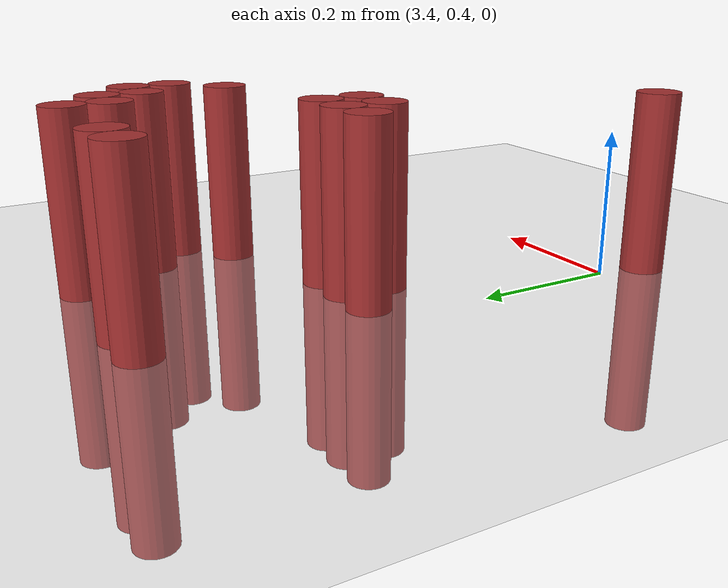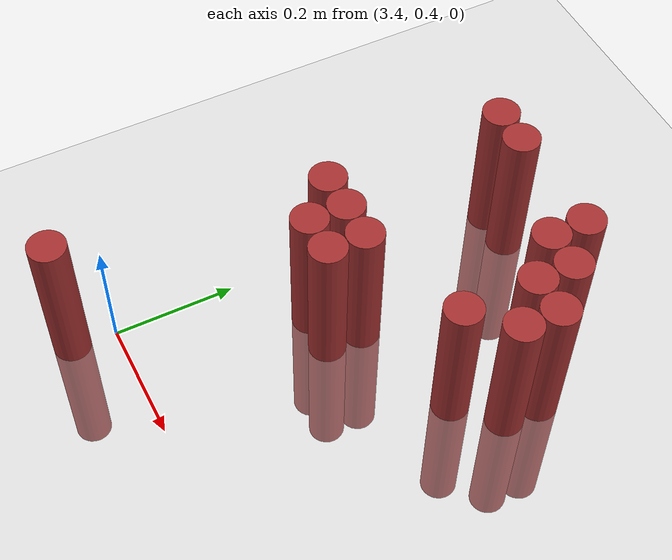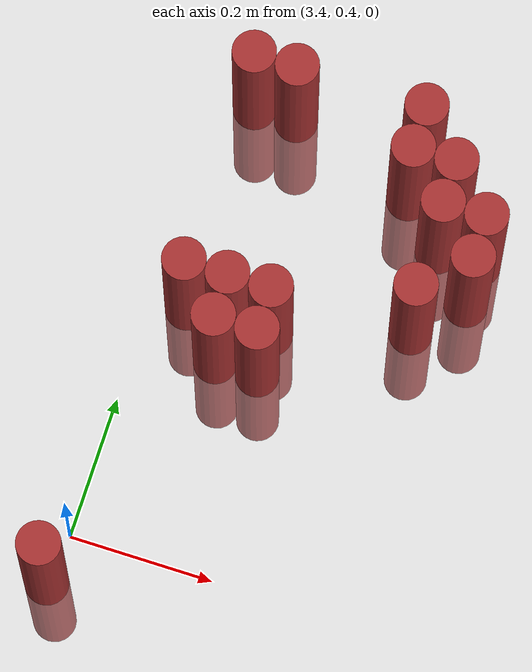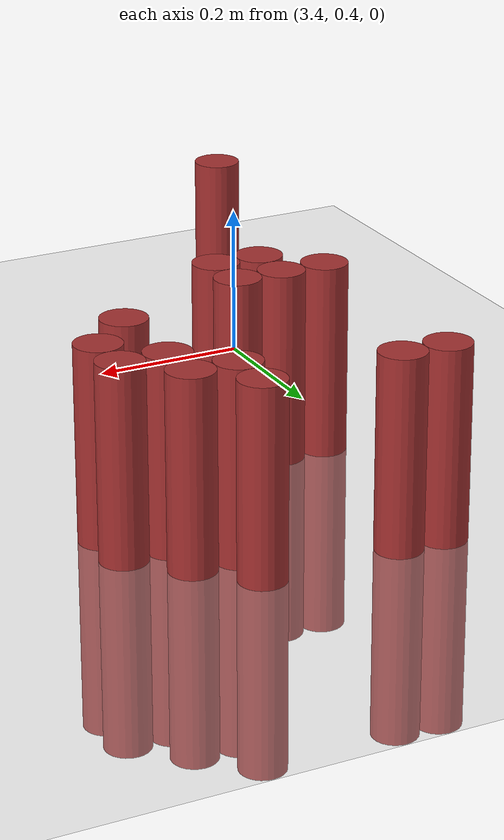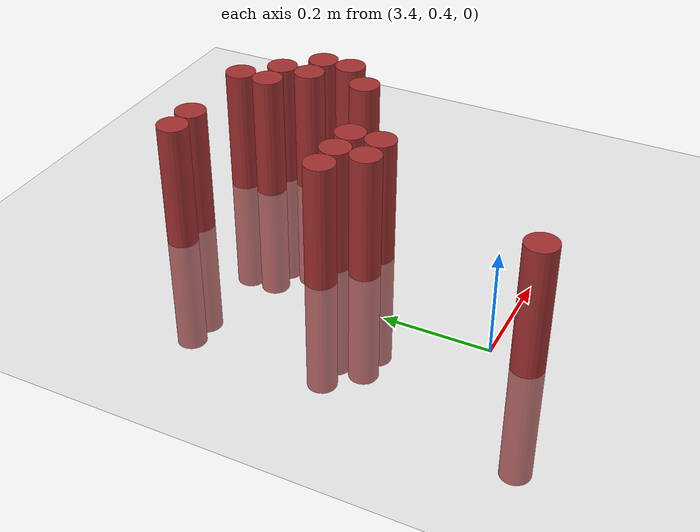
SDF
<sdf version="1.6">
 <world name="default">
  <model name="ground_plane">
   <static>1</static>
   <link name="link">
    <collision name="collision">
     <geometry><plane><normal>0 0 1</normal><size>100 100</size></plane></geometry>
     <surface><friction><ode><mu>100</mu><mu2>50</mu2></ode></friction></surface>
    </collision>
    <visual name="visual">
     <cast_shadows>0</cast_shadows>
     <geometry><plane><normal>0 0 1</normal><size>100 100</size></plane></geometry>
     <material>
      <script><uri>file://media/materials/scripts/gazebo.material</uri><name>Gazebo/Grey</name></script>
     </material>
    </visual>
   </link>
  </model>
  <model name="unit_cylinder_169">
   <static>1</static>
   <pose>3.450000 1.050000 0.000000 0.000000 0.000000 0.000000</pose>
   <link name="link">
    <inertial>
     <mass>1</mass>
     <inertia><ixx>0.145833</ixx><ixy>0</ixy><ixz>0</ixz><iyy>0.145833</iyy><iyz>0</iyz><izz>0.125</izz></inertia>
    </inertial>
    <collision name="collision">
     <geometry><cylinder><radius>0.030000</radius><length>0.5</length></cylinder></geometry>
    </collision>
    <visual name="visual">
     <geometry><cylinder><radius>0.030000</radius><length>0.5</length></cylinder></geometry>
     <material>
      <ambient>0.648000 0.192000 0.192000 1</ambient>
      <diffuse>0.648000 0.192000 0.192000 1</diffuse>
     </material>
     <material>
      <script><name>Gazebo/Grey</name><uri>file://media/materials/scripts/gazebo.material</uri></script>
     </material>
    </visual>
   </link>
  </model>
  <model name="unit_cylinder_170">
   <static>1</static>
   <pose>3.510000 1.050000 0.000000 0.000000 0.000000 0.000000</pose>
   <link name="link">
    <inertial>
     <mass>1</mass>
     <inertia><ixx>0.145833</ixx><ixy>0</ixy><ixz>0</ixz><iyy>0.145833</iyy><iyz>0</iyz><izz>0.125</izz></inertia>
    </inertial>
    <collision name="collision">
     <geometry><cylinder><radius>0.030000</radius><length>0.5</length></cylinder></geometry>
    </collision>
    <visual name="visual">
     <geometry><cylinder><radius>0.030000</radius><length>0.5</length></cylinder></geometry>
     <material>
      <ambient>0.648000 0.192000 0.192000 1</ambient>
      <diffuse>0.648000 0.192000 0.192000 1</diffuse>
     </material>
     <material>
      <script><name>Gazebo/Grey</name><uri>file://media/materials/scripts/gazebo.material</uri></script>
     </material>
    </visual>
   </link>
  </model>
  <model name="unit_cylinder_171">
   <static>1</static>
   <pose>3.690000 1.050000 0.000000 0.000000 0.000000 0.000000</pose>
   <link name="link">
    <inertial>
     <mass>1</mass>
     <inertia><ixx>0.145833</ixx><ixy>0</ixy><ixz>0</ixz><iyy>0.145833</iyy><iyz>0</iyz><izz>0.125</izz></inertia>
    </inertial>
    <collision name="collision">
     <geometry><cylinder><radius>0.030000</radius><length>0.5</length></cylinder></geometry>
    </collision>
    <visual name="visual">
     <geometry><cylinder><radius>0.030000</radius><length>0.5</length></cylinder></geometry>
     <material>
      <ambient>0.648000 0.192000 0.192000 1</ambient>
      <diffuse>0.648000 0.192000 0.192000 1</diffuse>
     </material>
     <material>
      <script><name>Gazebo/Grey</name><uri>file://media/materials/scripts/gazebo.material</uri></script>
     </material>
    </visual>
   </link>
  </model>
  <model name="unit_cylinder_173">
   <static>1</static>
   <pose>3.690000 0.990000 0.000000 0.000000 0.000000 0.000000</pose>
   <link name="link">
    <inertial>
     <mass>1</mass>
     <inertia><ixx>0.145833</ixx><ixy>0</ixy><ixz>0</ixz><iyy>0.145833</iyy><iyz>0</iyz><izz>0.125</izz></inertia>
    </inertial>
    <collision name="collision">
     <geometry><cylinder><radius>0.030000</radius><length>0.5</length></cylinder></geometry>
    </collision>
    <visual name="visual">
     <geometry><cylinder><radius>0.030000</radius><length>0.5</length></cylinder></geometry>
     <material>
      <ambient>0.648000 0.192000 0.192000 1</ambient>
      <diffuse>0.648000 0.192000 0.192000 1</diffuse>
     </material>
     <material>
      <script><name>Gazebo/Grey</name><uri>file://media/materials/scripts/gazebo.material</uri></script>
     </material>
    </visual>
   </link>
  </model>
  <model name="unit_cylinder_174">
   <static>1</static>
   <pose>3.750000 0.990000 0.000000 0.000000 0.000000 0.000000</pose>
   <link name="link">
    <inertial>
     <mass>1</mass>
     <inertia><ixx>0.145833</ixx><ixy>0</ixy><ixz>0</ixz><iyy>0.145833</iyy><iyz>0</iyz><izz>0.125</izz></inertia>
    </inertial>
    <collision name="collision">
     <geometry><cylinder><radius>0.030000</radius><length>0.5</length></cylinder></geometry>
    </collision>
    <visual name="visual">
     <geometry><cylinder><radius>0.030000</radius><length>0.5</length></cylinder></geometry>
     <material>
      <ambient>0.648000 0.192000 0.192000 1</ambient>
      <diffuse>0.648000 0.192000 0.192000 1</diffuse>
     </material>
     <material>
      <script><name>Gazebo/Grey</name><uri>file://media/materials/scripts/gazebo.material</uri></script>
     </material>
    </visual>
   </link>
  </model>
  <model name="unit_cylinder_175">
   <static>1</static>
   <pose>3.750000 0.930000 0.000000 0.000000 0.000000 0.000000</pose>
   <link name="link">
    <inertial>
     <mass>1</mass>
     <inertia><ixx>0.145833</ixx><ixy>0</ixy><ixz>0</ixz><iyy>0.145833</iyy><iyz>0</iyz><izz>0.125</izz></inertia>
    </inertial>
    <collision name="collision">
     <geometry><cylinder><radius>0.030000</radius><length>0.5</length></cylinder></geometry>
    </collision>
    <visual name="visual">
     <geometry><cylinder><radius>0.030000</radius><length>0.5</length></cylinder></geometry>
     <material>
      <ambient>0.648000 0.192000 0.192000 1</ambient>
      <diffuse>0.648000 0.192000 0.192000 1</diffuse>
     </material>
     <material>
      <script><name>Gazebo/Grey</name><uri>file://media/materials/scripts/gazebo.material</uri></script>
     </material>
    </visual>
   </link>
  </model>
  <model name="unit_cylinder_176">
   <static>1</static>
   <pose>3.810000 0.930000 0.000000 0.000000 0.000000 0.000000</pose>
   <link name="link">
    <inertial>
     <mass>1</mass>
     <inertia><ixx>0.145833</ixx><ixy>0</ixy><ixz>0</ixz><iyy>0.145833</iyy><iyz>0</iyz><izz>0.125</izz></inertia>
    </inertial>
    <collision name="collision">
     <geometry><cylinder><radius>0.030000</radius><length>0.5</length></cylinder></geometry>
    </collision>
    <visual name="visual">
     <geometry><cylinder><radius>0.030000</radius><length>0.5</length></cylinder></geometry>
     <material>
      <ambient>0.648000 0.192000 0.192000 1</ambient>
      <diffuse>0.648000 0.192000 0.192000 1</diffuse>
     </material>
     <material>
      <script><name>Gazebo/Grey</name><uri>file://media/materials/scripts/gazebo.material</uri></script>
     </material>
    </visual>
   </link>
  </model>
  <model name="unit_cylinder_178">
   <static>1</static>
   <pose>3.810000 0.870000 0.000000 0.000000 0.000000 0.000000</pose>
   <link name="link">
    <inertial>
     <mass>1</mass>
     <inertia><ixx>0.145833</ixx><ixy>0</ixy><ixz>0</ixz><iyy>0.145833</iyy><iyz>0</iyz><izz>0.125</izz></inertia>
    </inertial>
    <collision name="collision">
     <geometry><cylinder><radius>0.030000</radius><length>0.5</length></cylinder></geometry>
    </collision>
    <visual name="visual">
     <geometry><cylinder><radius>0.030000</radius><length>0.5</length></cylinder></geometry>
     <material>
      <ambient>0.648000 0.192000 0.192000 1</ambient>
      <diffuse>0.648000 0.192000 0.192000 1</diffuse>
     </material>
     <material>
      <script><name>Gazebo/Grey</name><uri>file://media/materials/scripts/gazebo.material</uri></script>
     </material>
    </visual>
   </link>
  </model>
  <model name="unit_cylinder_182">
   <static>1</static>
   <pose>3.750000 0.810000 0.000000 0.000000 0.000000 0.000000</pose>
   <link name="link">
    <inertial>
     <mass>1</mass>
     <inertia><ixx>0.145833</ixx><ixy>0</ixy><ixz>0</ixz><iyy>0.145833</iyy><iyz>0</iyz><izz>0.125</izz></inertia>
    </inertial>
    <collision name="collision">
     <geometry><cylinder><radius>0.030000</radius><length>0.5</length></cylinder></geometry>
    </collision>
    <visual name="visual">
     <geometry><cylinder><radius>0.030000</radius><length>0.5</length></cylinder></geometry>
     <material>
      <ambient>0.648000 0.192000 0.192000 1</ambient>
      <diffuse>0.648000 0.192000 0.192000 1</diffuse>
     </material>
     <material>
      <script><name>Gazebo/Grey</name><uri>file://media/materials/scripts/gazebo.material</uri></script>
     </material>
    </visual>
   </link>
  </model>
  <model name="unit_cylinder_184">
   <static>1</static>
   <pose>3.450000 0.750000 0.000000 0.000000 0.000000 0.000000</pose>
   <link name="link">
    <inertial>
     <mass>1</mass>
     <inertia><ixx>0.145833</ixx><ixy>0</ixy><ixz>0</ixz><iyy>0.145833</iyy><iyz>0</iyz><izz>0.125</izz></inertia>
    </inertial>
    <collision name="collision">
     <geometry><cylinder><radius>0.030000</radius><length>0.5</length></cylinder></geometry>
    </collision>
    <visual name="visual">
     <geometry><cylinder><radius>0.030000</radius><length>0.5</length></cylinder></geometry>
     <material>
      <ambient>0.648000 0.192000 0.192000 1</ambient>
      <diffuse>0.648000 0.192000 0.192000 1</diffuse>
     </material>
     <material>
      <script><name>Gazebo/Grey</name><uri>file://media/materials/scripts/gazebo.material</uri></script>
     </material>
    </visual>
   </link>
  </model>
  <model name="unit_cylinder_185">
   <static>1</static>
   <pose>3.510000 0.750000 0.000000 0.000000 0.000000 0.000000</pose>
   <link name="link">
    <inertial>
     <mass>1</mass>
     <inertia><ixx>0.145833</ixx><ixy>0</ixy><ixz>0</ixz><iyy>0.145833</iyy><iyz>0</iyz><izz>0.125</izz></inertia>
    </inertial>
    <collision name="collision">
     <geometry><cylinder><radius>0.030000</radius><length>0.5</length></cylinder></geometry>
    </collision>
    <visual name="visual">
     <geometry><cylinder><radius>0.030000</radius><length>0.5</length></cylinder></geometry>
     <material>
      <ambient>0.648000 0.192000 0.192000 1</ambient>
      <diffuse>0.648000 0.192000 0.192000 1</diffuse>
     </material>
     <material>
      <script><name>Gazebo/Grey</name><uri>file://media/materials/scripts/gazebo.material</uri></script>
     </material>
    </visual>
   </link>
  </model>
  <model name="unit_cylinder_186">
   <static>1</static>
   <pose>3.570000 0.750000 0.000000 0.000000 0.000000 0.000000</pose>
   <link name="link">
    <inertial>
     <mass>1</mass>
     <inertia><ixx>0.145833</ixx><ixy>0</ixy><ixz>0</ixz><iyy>0.145833</iyy><iyz>0</iyz><izz>0.125</izz></inertia>
    </inertial>
    <collision name="collision">
     <geometry><cylinder><radius>0.030000</radius><length>0.5</length></cylinder></geometry>
    </collision>
    <visual name="visual">
     <geometry><cylinder><radius>0.030000</radius><length>0.5</length></cylinder></geometry>
     <material>
      <ambient>0.648000 0.192000 0.192000 1</ambient>
      <diffuse>0.648000 0.192000 0.192000 1</diffuse>
     </material>
     <material>
      <script><name>Gazebo/Grey</name><uri>file://media/materials/scripts/gazebo.material</uri></script>
     </material>
    </visual>
   </link>
  </model>
  <model name="unit_cylinder_188">
   <static>1</static>
   <pose>3.510000 0.690000 0.000000 0.000000 0.000000 0.000000</pose>
   <link name="link">
    <inertial>
     <mass>1</mass>
     <inertia><ixx>0.145833</ixx><ixy>0</ixy><ixz>0</ixz><iyy>0.145833</iyy><iyz>0</iyz><izz>0.125</izz></inertia>
    </inertial>
    <collision name="collision">
     <geometry><cylinder><radius>0.030000</radius><length>0.5</length></cylinder></geometry>
    </collision>
    <visual name="visual">
     <geometry><cylinder><radius>0.030000</radius><length>0.5</length></cylinder></geometry>
     <material>
      <ambient>0.648000 0.192000 0.192000 1</ambient>
      <diffuse>0.648000 0.192000 0.192000 1</diffuse>
     </material>
     <material>
      <script><name>Gazebo/Grey</name><uri>file://media/materials/scripts/gazebo.material</uri></script>
     </material>
    </visual>
   </link>
  </model>
  <model name="unit_cylinder_189">
   <static>1</static>
   <pose>3.570000 0.690000 0.000000 0.000000 0.000000 0.000000</pose>
   <link name="link">
    <inertial>
     <mass>1</mass>
     <inertia><ixx>0.145833</ixx><ixy>0</ixy><ixz>0</ixz><iyy>0.145833</iyy><iyz>0</iyz><izz>0.125</izz></inertia>
    </inertial>
    <collision name="collision">
     <geometry><cylinder><radius>0.030000</radius><length>0.5</length></cylinder></geometry>
    </collision>
    <visual name="visual">
     <geometry><cylinder><radius>0.030000</radius><length>0.5</length></cylinder></geometry>
     <material>
      <ambient>0.648000 0.192000 0.192000 1</ambient>
      <diffuse>0.648000 0.192000 0.192000 1</diffuse>
     </material>
     <material>
      <script><name>Gazebo/Grey</name><uri>file://media/materials/scripts/gazebo.material</uri></script>
     </material>
    </visual>
   </link>
  </model>
  <model name="unit_cylinder_196">
   <static>1</static>
   <pose>3.390000 0.330000 0.000000 0.000000 0.000000 0.000000</pose>
   <link name="link">
    <inertial>
     <mass>1</mass>
     <inertia><ixx>0.145833</ixx><ixy>0</ixy><ixz>0</ixz><iyy>0.145833</iyy><iyz>0</iyz><izz>0.125</izz></inertia>
    </inertial>
    <collision name="collision">
     <geometry><cylinder><radius>0.030000</radius><length>0.5</length></cylinder></geometry>
    </collision>
    <visual name="visual">
     <geometry><cylinder><radius>0.030000</radius><length>0.5</length></cylinder></geometry>
     <material>
      <ambient>0.648000 0.192000 0.192000 1</ambient>
      <diffuse>0.648000 0.192000 0.192000 1</diffuse>
     </material>
     <material>
      <script><name>Gazebo/Grey</name><uri>file://media/materials/scripts/gazebo.material</uri></script>
     </material>
    </visual>
   </link>
  </model>
 </world>
</sdf>
